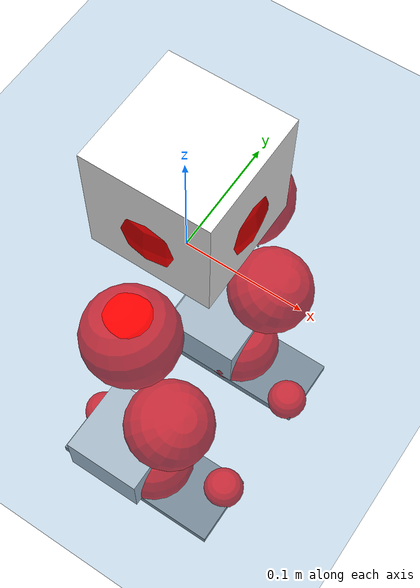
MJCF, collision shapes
<mujoco model="pi_12dof_release_v1">
  <compiler angle="radian" assetdir="assets" balanceinertia="true" inertiafromgeom="false"/>

  <option timestep="0.005" density="1.2" viscosity="2e-05"/>

  <size nkey="1"/>

  <visual>
    <quality shadowsize="8192"/>
    <map shadowclip="0.5"/>
  </visual>

  <default>
    <default class="/">
      <joint armature="0.01" damping="0.01" frictionloss="0.01"/>
      <geom contype="0" conaffinity="0" group="1" solref="-1000 -80"/>
      <site size="0.01 0.005 0.005" group="5"/>
      <general forcelimited="true" biastype="affine" gainprm="20" biasprm="0 -20 -0.5"/>
      <default class="foot">
        <geom size="0.0845 0.036 0.005" type="box" condim="6" group="4" priority="1" friction="0.9 0.2 0.2" solimp="0.015 1 0.005"/>
      </default>
      <default class="reward_collision_sphere">
        <geom group="5" rgba="1 0 0 1"/>
      </default>
    </default>
  </default>

  <asset>
    <texture type="skybox" colorspace="auto" name="//unnamed_texture_0" builtin="gradient" rgb1="0.95 0.95 0.95" rgb2="0.95 0.95 0.95" width="100" height="600"/>
    <texture type="2d" colorspace="auto" name="texplane" builtin="checker" rgb1="0.345 0.575 0.748" rgb2="0.345 0.575 0.748" markrgb="1 1 1" width="512" height="512"/>
    <material name="MatPlane" class="/" texture="texplane" texuniform="true" texrepeat="2 2" specular="0.9"/>
    <mesh name="baselink_1" class="/" file="baselink_1.STL"/>
    <mesh name="r_hip_pitch_link" class="/" file="r_hip_pitch_link.STL"/>
    <mesh name="r_hip_roll_link" class="/" file="r_hip_roll_link.STL"/>
    <mesh name="r_thigh_link" class="/" file="r_thigh_link.STL"/>
    <mesh name="r_calf_link" class="/" file="r_calf_link.STL"/>
    <mesh name="r_ankle_pitch_link" class="/" file="r_ankle_pitch_link.STL"/>
    <mesh name="r_ankle_roll_link" class="/" file="r_ankle_roll_link.STL"/>
    <mesh name="l_hip_pitch_link" class="/" file="l_hip_pitch_link.STL"/>
    <mesh name="l_hip_roll_link" class="/" file="l_hip_roll_link.STL"/>
    <mesh name="l_thigh_link" class="/" file="l_thigh_link.STL"/>
    <mesh name="l_calf_link" class="/" file="l_calf_link.STL"/>
    <mesh name="l_ankle_pitch_link" class="/" file="l_ankle_pitch_link.STL"/>
    <mesh name="l_ankle_roll_link" class="/" file="l_ankle_roll_link.STL"/>
  </asset>

  <worldbody>
    <geom name="floor" class="/" size="100 100 0.125" type="plane" group="0" material="MatPlane"/>
    <light name="toplight_shadow" class="/" pos="0 0 5" dir="0.0990148 0.0990148 -0.990148" type="directional" ambient="0.04 0.04 0.04" diffuse="0.55 0.55 0.55" specular="0.12 0.12 0.12"/>
    <light name="toplight_fill" class="/" pos="0 0 5" dir="0.0990148 0.0990148 -0.990148" type="directional" castshadow="false" ambient="0.04 0.04 0.04" diffuse="0.3 0.3 0.3" specular="0.08 0.08 0.08"/>
    <body name="trunk" pos="0.00165615 0.00220237 0.00102532" quat="1 0.000226394 0.000160474 0.000285592">
      <inertial pos="0.003041 -0.0011522 0.0395259" quat="0.690175 0.012188 -0.00220493 0.723536" mass="2.24427" diaginertia="0.0157828 0.00764088 0.00363542"/>
      <joint name="//unnamed_joint_0" type="free"/>
      <geom name="//unnamed_geom_1" class="/" type="mesh" density="0" rgba="1 1 1 1" mesh="baselink_1"/>
      <geom name="//unnamed_geom_2" class="/" size="0.0503562 0.0503562 0.0503562" pos="0 0 0.0779584" type="box" rgba="1 1 1 1"/>
      <geom name="//unnamed_geom_3" class="reward_collision_sphere" size="0.0553918" pos="0 0 0.0682136"/>
      <site name="imu" class="/" pos="0.00585636 0.00270398 -0.00401926" size="0.0100712"/>
      <camera name="track" class="/" pos="0 -1.91339 0" quat="0.707107 0.707107 0 0" mode="trackcom"/>
      <camera name="ego_camera" class="/" pos="0.0817648 0 0.175406" quat="-0.5 -0.5 0.5 0.5"/>
      <body name="r_hip_pitch_link" pos="-0.000673146 -0.0210392 -0.0346258" quat="0.992123 -0.000611782 -0.125265 0.000368607">
        <inertial pos="-8.52856e-05 -0.0564307 0.000368474" quat="-0.0181199 0.706903 -0.026352 0.706588" mass="0.379291" diaginertia="0.00016798 7.67127e-05 7.43405e-05"/>
        <joint name="r_hip_pitch_joint" class="/" pos="0 0 0" axis="0.00170609 -0.999968 -0.00786989" range="-1.72727 1.3044" armature="0.00998013" damping="0.0157263" frictionloss="0.0100163"/>
        <geom name="//unnamed_geom_4" class="/" type="mesh" density="0" rgba="0.75294 0.75294 0.75294 1" mesh="r_hip_pitch_link"/>
        <geom name="//unnamed_geom_5" class="/" size="0.000503562 0.000503562 0.000503562" type="box" rgba="0.75294 0.75294 0.75294 1"/>
        <body name="r_hip_roll_link" pos="-0.00281969 -0.0539684 -0.0017544" quat="0.999999 -0.00118277 -0.00026588 -0.000647022">
          <inertial pos="-0.00125723 -0.000716644 -0.059713" quat="0.703443 -0.0918327 -0.0817447 0.700038" mass="0.383234" diaginertia="0.000499384 0.000217776 0.000111044"/>
          <joint name="r_hip_roll_joint" class="/" pos="0 0 0" axis="-0.999933 -0.00294417 -0.0112257" stiffness="0.00150257" range="-0.131744 0.534" armature="0.0111847" damping="0" frictionloss="0.00874819"/>
          <geom name="//unnamed_geom_6" class="/" type="mesh" density="0" rgba="0.75294 0.75294 0.75294 1" mesh="r_hip_roll_link"/>
          <geom name="//unnamed_geom_7" class="/" size="0.000503562 0.000503562 0.000503562" type="box" rgba="0.75294 0.75294 0.75294 1"/>
          <geom name="//unnamed_geom_8" class="reward_collision_sphere" size="0.040285"/>
          <body name="r_thigh_link" pos="0.000117118 -0.000234237 -0.0661215" quat="0.999999 -0.00105804 6.99688e-05 0.000503052">
            <inertial pos="0.00297654 -0.000430575 -0.0466307" quat="0.735595 0.677401 -0.00401015 -0.0035364" mass="0.123419" diaginertia="0.000193008 7.90462e-05 5.13388e-05"/>
            <joint name="r_thigh_joint" class="/" pos="0 0 0" axis="-0.00866259 0.0138543 -0.999867" stiffness="0.00560416" range="-0.249258 0.61364" armature="0.0103569" damping="0.000321053" frictionloss="0.00877004"/>
            <geom name="//unnamed_geom_9" class="/" type="mesh" density="0" rgba="0.75294 0.75294 0.75294 1" mesh="r_thigh_link"/>
            <geom name="//unnamed_geom_10" class="/" size="0.000503562 0.000503562 0.000503562" type="box" rgba="0.75294 0.75294 0.75294 1"/>
            <body name="r_calf_link" pos="-0.000391472 -0.0027539 -0.0701832" quat="0.947626 0.000469016 0.319383 0.000444538">
              <inertial pos="0.000481712 0.000867526 -0.0692005" quat="0.999957 0.00821123 -0.00304985 -0.00310699" mass="0.836485" diaginertia="0.00555718 0.00273997 0.000155331"/>
              <joint name="r_calf_joint" class="/" pos="0 0 0" axis="-0.000523551 -0.999999 0.00107875" range="-1.63077 0.647698" armature="0.0113473" damping="0.0060798" frictionloss="0.0101775"/>
              <geom name="//unnamed_geom_11" class="/" type="mesh" density="0" rgba="0.75294 0.75294 0.75294 1" mesh="r_calf_link"/>
              <geom name="//unnamed_geom_12" class="/" size="0.000503562 0.000503562 0.000503562" type="box" rgba="0.75294 0.75294 0.75294 1"/>
              <geom name="//unnamed_geom_13" class="reward_collision_sphere" size="0.040285"/>
              <body name="r_ankle_pitch_link" pos="-0.000746823 -0.00229834 -0.133902" quat="0.980073 6.51104e-05 -0.19864 0.000108244">
                <inertial pos="0.00247514 0.00323386 0.000561253" quat="0.00222178 0.707182 -0.00216934 0.707025" mass="0.183962" diaginertia="0.000479389 0.000181072 0.000107349"/>
                <joint name="r_ankle_pitch_joint" class="/" pos="0 0 0" axis="0.0139741 -0.999879 -0.00682536" stiffness="0.00921006" range="-1.24935 0.49508" armature="0.00914477" damping="0.0204312" frictionloss="0.00873049"/>
                <geom name="//unnamed_geom_14" class="/" type="mesh" density="0" rgba="0.75294 0.75294 0.75294 1" mesh="r_ankle_pitch_link"/>
                <geom name="//unnamed_geom_15" class="/" size="0.0392778 0.040285 0.0251781" type="box" rgba="0.75294 0.75294 0.75294 1"/>
                <body name="r_ankle_roll_link" pos="0.0822575 0.00565828 0.00184876" quat="1 -1.78936e-05 -0.000251918 -0.000133113">
                  <inertial pos="-0.0260724 -0.00256791 -0.0120597" quat="0.559904 0.430667 0.434163 0.559048" mass="0.518378" diaginertia="0.00181032 0.000850336 0.000251795"/>
                  <joint name="r_ankle_roll_joint" class="/" pos="0 0 0" axis="-0.999998 0.00135631 0.00167753" range="-0.14406 0.159498" armature="0.0105471" damping="0.010977" frictionloss="0.0102245"/>
                  <geom name="//unnamed_geom_16" class="/" type="mesh" density="0" rgba="0.75294 0.75294 0.75294 1" mesh="r_ankle_roll_link"/>
                  <geom name="//unnamed_geom_17" class="/" type="mesh" rgba="0.75294 0.75294 0.75294 1" mesh="r_ankle_roll_link"/>
                  <geom name="right_foot" class="foot" size="0.0854416 0.0354 0.0047355" pos="-0.0556001 0 -0.0428771"/>
                  <geom name="//unnamed_geom_19" class="reward_collision_sphere" size="0.040285" pos="-0.0545099 0 -0.0194896"/>
                  <geom name="//unnamed_geom_20" class="reward_collision_sphere" size="0.0201425" pos="0.016353 0.0191339 -0.0389792"/>
                  <geom name="//unnamed_geom_21" class="reward_collision_sphere" size="0.0201425" pos="-0.130824 0.0191339 -0.0389792"/>
                  <site name="right_foot" class="foot" pos="-0.0556001 0 -0.0428771" size="0.0100712"/>
                </body>
              </body>
            </body>
          </body>
        </body>
      </body>
      <body name="l_hip_pitch_link" pos="-0.000742658 0.0193874 -0.0323781" quat="0.99219 -0.000102742 -0.124734 -0.000128949">
        <inertial pos="0.00199302 0.0518258 0.000168563" quat="-0.0392082 0.70698 0.0204278 0.70585" mass="0.382404" diaginertia="0.000193725 8.36914e-05 8.57839e-05"/>
        <joint name="l_hip_pitch_joint" class="/" pos="0 0 0" axis="0.00103917 0.999996 -0.00273407" range="-1.27379 1.74434" armature="0.00970789" damping="0.0150343" frictionloss="0.0114159"/>
        <geom name="//unnamed_geom_22" class="/" type="mesh" density="0" rgba="0.75294 0.75294 0.75294 1" mesh="l_hip_pitch_link"/>
        <geom name="//unnamed_geom_23" class="/" size="0.000503562 0.000503562 0.000503562" type="box" rgba="0.75294 0.75294 0.75294 1"/>
        <body name="l_hip_roll_link" pos="0.00337769 0.0560732 -0.000998128" quat="0.999999 -0.00110219 -0.000129931 0.000516441">
          <inertial pos="0.000217906 0.000797551 -0.0602248" quat="0.690971 -0.0782793 -0.0822939 0.713904" mass="0.412174" diaginertia="0.000511831 0.000226902 0.00011629"/>
          <joint name="l_hip_roll_joint" class="/" pos="0 0 0" axis="-0.999929 -0.0112751 0.00382383" range="-0.488484 0.165767" armature="0.0112487" damping="0" frictionloss="0.00865015"/>
          <geom name="//unnamed_geom_24" class="/" type="mesh" density="0" rgba="0.75294 0.75294 0.75294 1" mesh="l_hip_roll_link"/>
          <geom name="//unnamed_geom_25" class="/" size="0.000503562 0.000503562 0.000503562" type="box" rgba="0.75294 0.75294 0.75294 1"/>
          <geom name="//unnamed_geom_26" class="reward_collision_sphere" size="0.040285"/>
          <body name="l_thigh_link" pos="-0.00220045 0.00143412 -0.0677443" quat="1 -1.03181e-05 -0.000145679 5.20273e-05">
            <inertial pos="7.06865e-06 -0.0016032 -0.0465148" quat="0.683963 0.729478 0.00748671 -0.00118037" mass="0.113664" diaginertia="0.000194705 7.38438e-05 5.0824e-05"/>
            <joint name="l_thigh_joint" class="/" pos="0 0 0" axis="0.00600095 0.00344439 -0.999976" range="-0.621969 0.315834" armature="0.0103663" damping="0" frictionloss="0.00960124"/>
            <geom name="//unnamed_geom_27" class="/" type="mesh" density="0" rgba="0.75294 0.75294 0.75294 1" mesh="l_thigh_link"/>
            <geom name="//unnamed_geom_28" class="/" size="0.000503562 0.000503562 0.000503562" type="box" rgba="0.75294 0.75294 0.75294 1"/>
            <body name="l_calf_link" pos="-0.00122099 0.00313473 -0.0697611" quat="0.947438 -8.69622e-05 0.319939 -0.000577859">
              <inertial pos="0.00314146 0.00578614 -0.0691098" quat="0.999984 -0.00043873 -0.00298517 0.00478982" mass="0.829267" diaginertia="0.00561229 0.00290148 0.000158741"/>
              <joint name="l_calf_joint" class="/" pos="0 0 0" axis="-0.00400116 0.99997 0.00661324" range="-0.595572 1.69653" armature="0.0102092" damping="0.00233427" frictionloss="0.0090145"/>
              <geom name="//unnamed_geom_29" class="/" type="mesh" density="0" rgba="0.75294 0.75294 0.75294 1" mesh="l_calf_link"/>
              <geom name="//unnamed_geom_30" class="/" size="0.000503562 0.000503562 0.000503562" type="box" rgba="0.75294 0.75294 0.75294 1"/>
              <geom name="//unnamed_geom_31" class="reward_collision_sphere" size="0.040285"/>
              <body name="l_ankle_pitch_link" pos="0.000798323 0.000293388 -0.135355" quat="0.979991 3.15908e-06 -0.199041 0.00100274">
                <inertial pos="0.00686398 0.000182814 0.00105762" quat="-0.00154404 0.707389 0.00197004 0.70682" mass="0.178055" diaginertia="0.000479392 0.000182725 0.000105494"/>
                <joint name="l_ankle_pitch_joint" class="/" pos="0 0 0" axis="0.00987826 0.999949 -0.00186152" stiffness="0.00537454" range="-0.451419 1.3592" armature="0.0093691" damping="0" frictionloss="0.0101507"/>
                <geom name="//unnamed_geom_32" class="/" type="mesh" density="0" rgba="0.75294 0.75294 0.75294 1" mesh="l_ankle_pitch_link"/>
                <geom name="//unnamed_geom_33" class="/" size="0.0392778 0.040285 0.0251781" type="box" rgba="0.75294 0.75294 0.75294 1"/>
                <body name="l_ankle_roll_link" pos="0.0808297 -0.000697736 -0.000465227" quat="1 -5.83252e-05 0.00011185 -0.000101727">
                  <inertial pos="-0.0279157 -0.000333815 -0.0130452" quat="0.563588 0.427779 0.434555 0.557257" mass="0.549732" diaginertia="0.00170207 0.000856099 0.000252669"/>
                  <joint name="l_ankle_roll_joint" class="/" pos="0 0 0" axis="-0.99997 -0.00529276 0.00565808" stiffness="0.00467772" range="-0.141998 0.0969384" armature="0.00980705" damping="0.0146115" frictionloss="0.0109634"/>
                  <geom name="//unnamed_geom_34" class="/" type="mesh" density="0" rgba="0.75294 0.75294 0.75294 1" mesh="l_ankle_roll_link"/>
                  <geom name="//unnamed_geom_35" class="/" type="mesh" rgba="0.75294 0.75294 0.75294 1" mesh="l_ankle_roll_link"/>
                  <geom name="left_foot" class="foot" size="0.0853031 0.0345607 0.00455473" pos="-0.0556001 0 -0.0428771"/>
                  <geom name="//unnamed_geom_37" class="reward_collision_sphere" size="0.040285" pos="-0.0545099 0 -0.0194896"/>
                  <geom name="//unnamed_geom_38" class="reward_collision_sphere" size="0.0201425" pos="0.016353 -0.0191339 -0.0389792"/>
                  <geom name="//unnamed_geom_39" class="reward_collision_sphere" size="0.0201425" pos="-0.130824 -0.0191339 -0.0389792"/>
                  <site name="left_foot" class="foot" pos="-0.0556001 0 -0.0428771" size="0.0100712"/>
                </body>
              </body>
            </body>
          </body>
        </body>
      </body>
    </body>
  </worldbody>

  <contact>
    <pair class="/" geom1="floor" geom2="right_foot" name="//unnamed_contact_1"/>
    <pair class="/" geom1="floor" geom2="left_foot" name="//unnamed_contact_0"/>
  </contact>

  <actuator>
    <general name="r_hip_pitch_joint" class="/" joint="r_hip_pitch_joint" forcerange="-23.2269 23.2269" gainprm="19.7723" biasprm="0 -19.7723 -0.503991"/>
    <general name="r_hip_roll_joint" class="/" joint="r_hip_roll_joint" forcerange="-22.3024 22.3024" gainprm="19.7723" biasprm="0 -19.7723 -0.503991"/>
    <general name="r_thigh_joint" class="/" joint="r_thigh_joint" forcerange="-19.5082 19.5082" gainprm="19.7723" biasprm="0 -19.7723 -0.503991"/>
    <general name="r_calf_joint" class="/" joint="r_calf_joint" forcerange="-21.6675 21.6675" gainprm="19.7723" biasprm="0 -19.7723 -0.503991"/>
    <general name="r_ankle_pitch_joint" class="/" joint="r_ankle_pitch_joint" forcerange="-20.26 20.26" gainprm="19.7723" biasprm="0 -19.7723 -0.503991"/>
    <general name="r_ankle_roll_joint" class="/" joint="r_ankle_roll_joint" forcerange="-22.26 22.26" gainprm="19.7723" biasprm="0 -19.7723 -0.503991"/>
    <general name="l_hip_pitch_joint" class="/" joint="l_hip_pitch_joint" forcerange="-21.1141 21.1141" gainprm="19.7723" biasprm="0 -19.7723 -0.503991"/>
    <general name="l_hip_roll_joint" class="/" joint="l_hip_roll_joint" forcerange="-19.5134 19.5134" gainprm="19.7723" biasprm="0 -19.7723 -0.503991"/>
    <general name="l_thigh_joint" class="/" joint="l_thigh_joint" forcerange="-23.0725 23.0725" gainprm="19.7723" biasprm="0 -19.7723 -0.503991"/>
    <general name="l_calf_joint" class="/" joint="l_calf_joint" forcerange="-20.8997 20.8997" gainprm="19.7723" biasprm="0 -19.7723 -0.503991"/>
    <general name="l_ankle_pitch_joint" class="/" joint="l_ankle_pitch_joint" forcerange="-20.5519 20.5519" gainprm="19.7723" biasprm="0 -19.7723 -0.503991"/>
    <general name="l_ankle_roll_joint" class="/" joint="l_ankle_roll_joint" forcerange="-23.3908 23.3908" gainprm="19.7723" biasprm="0 -19.7723 -0.503991"/>
  </actuator>

  <sensor>
    <gyro site="imu" name="imu_angular_velocity"/>
    <velocimeter site="imu" name="imu_linear_velocity"/>
    <framelinvel objtype="site" objname="left_foot" name="left_foot_global_linear_velocity"/>
    <framelinvel objtype="site" objname="right_foot" name="right_foot_global_linear_velocity"/>
  </sensor>

  <keyframe>
    <key name="home" qpos="0 0 0.291 1 0 0 0 0.4 0 0 -0.8 0.4 0 -0.4 0 0 0.8 -0.4 0"/>
  </keyframe>
</mujoco>
